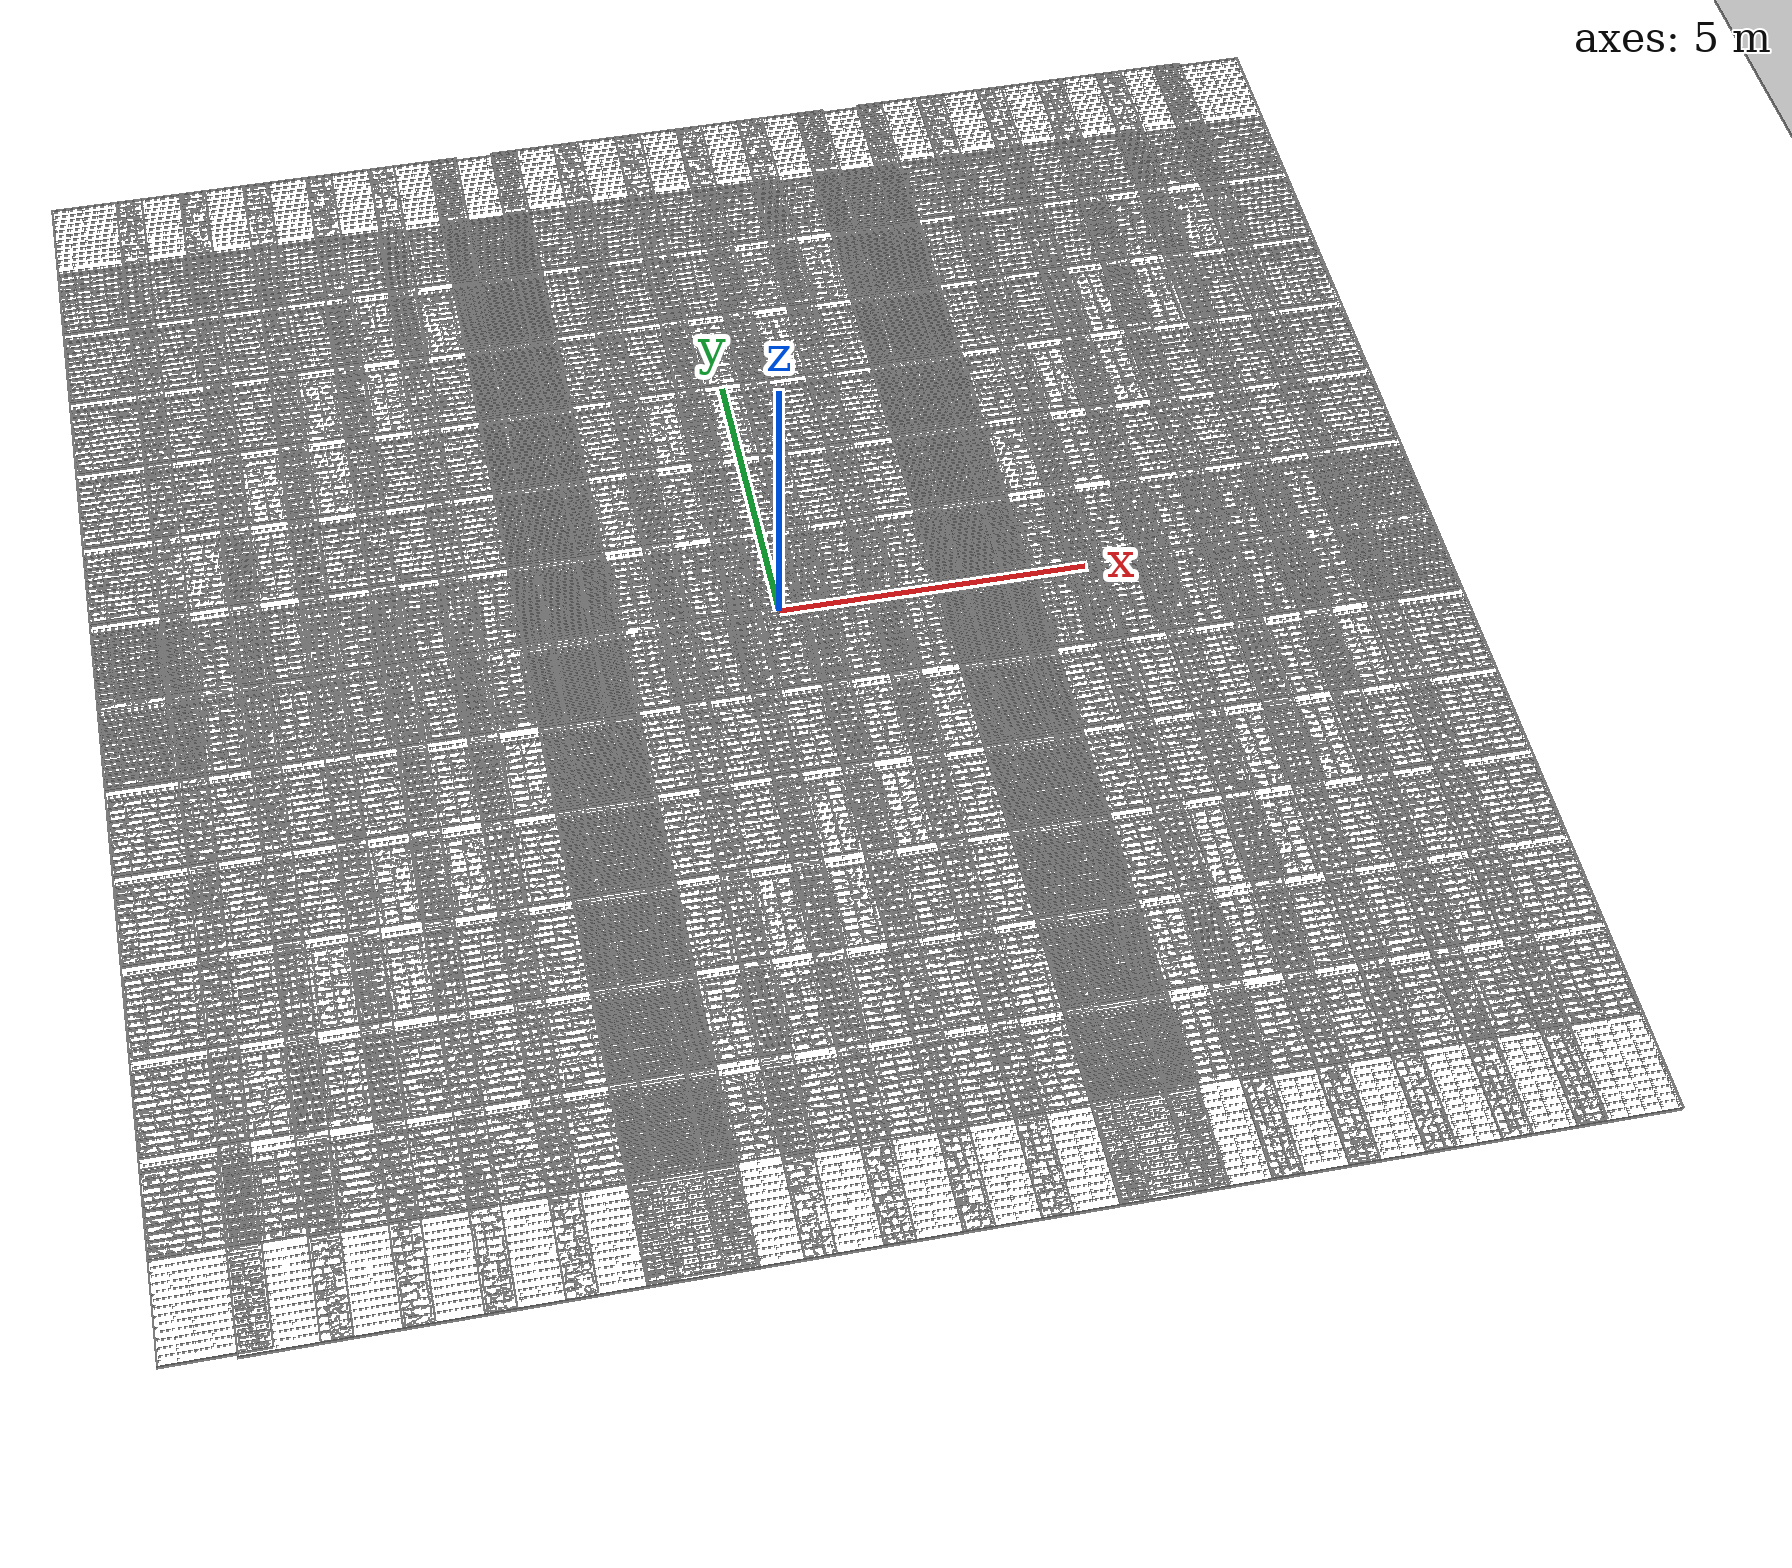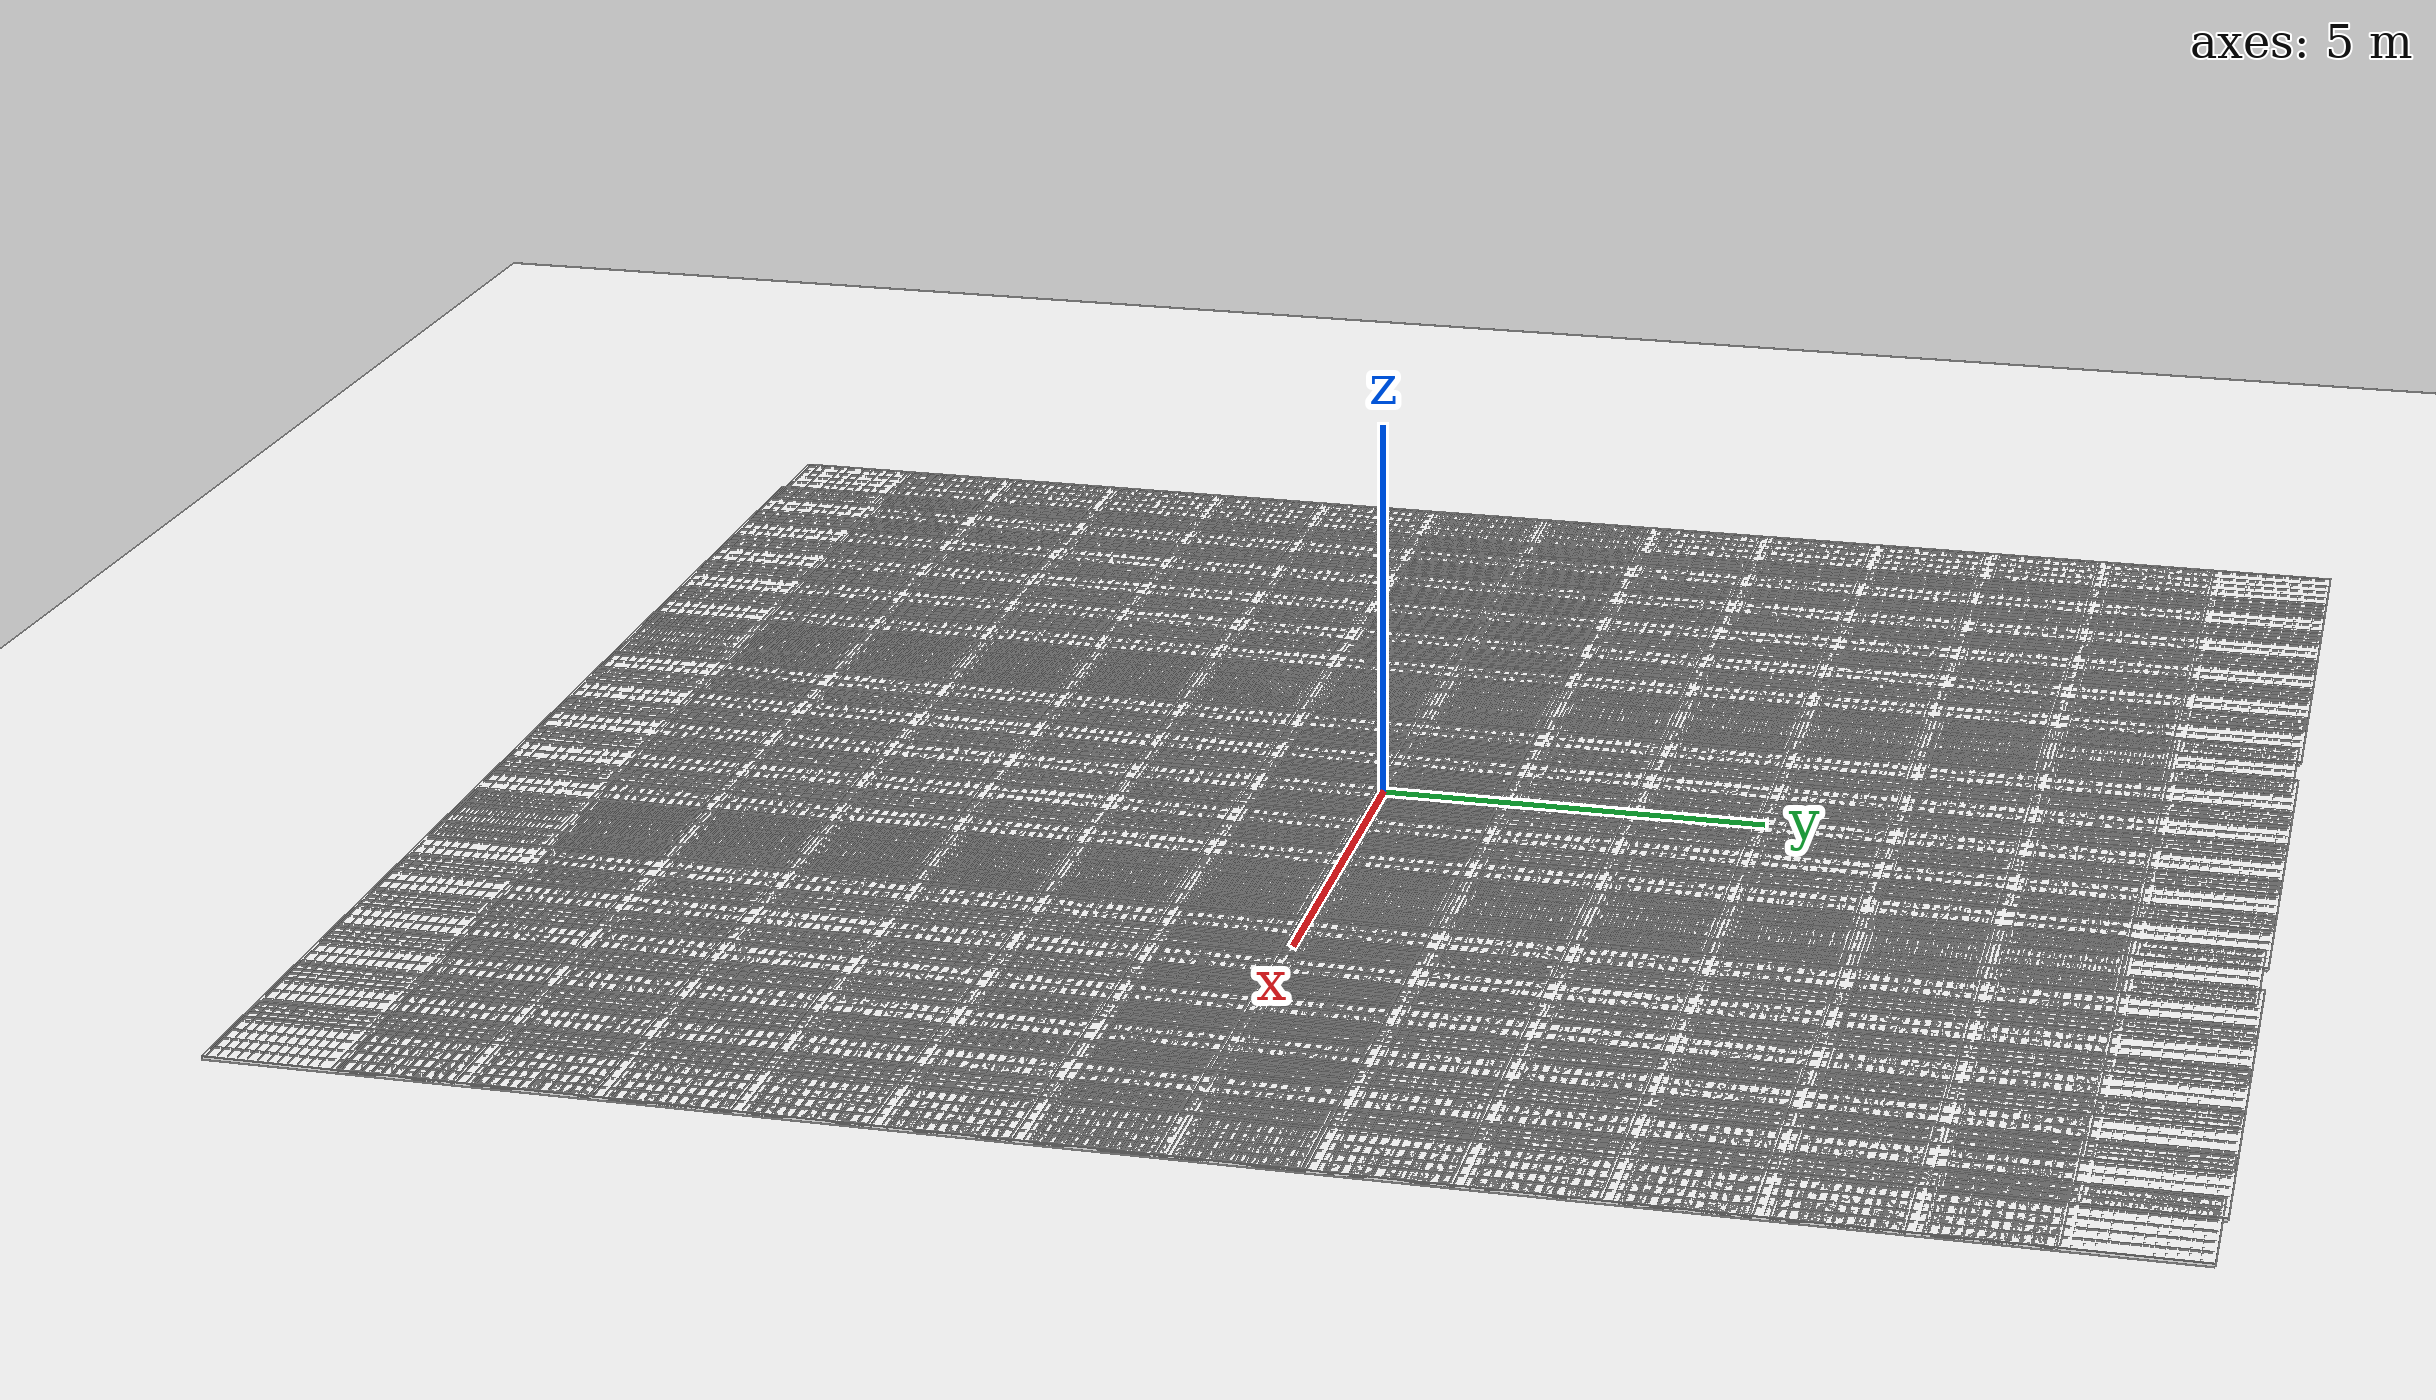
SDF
<?xml version="1.0"?>

<sdf version="1.6">
    <world name="my_experiment">
        <physics name="4ms" type="ignored">
            <max_step_size>0.004</max_step_size>
            <real_time_factor>1.0</real_time_factor>
        </physics>
        <plugin
            filename="gz-sim-physics-system"
            name="gz::sim::systems::Physics">
        </plugin>
        <plugin
            filename="gz-sim-scene-broadcaster-system"
            name="gz::sim::systems::SceneBroadcaster">
        </plugin>
        <plugin
            filename="gz-sim-user-commands-system"
            name="gz::sim::systems::UserCommands">
        </plugin>
        <plugin
            filename="gz-sim-sensors-system"
            name="gz::sim::systems::Sensors">
            <render_engine>ogre2</render_engine>
        </plugin>

        <light type="directional"
            name="sun">
            <cast_shadows>true</cast_shadows>
            <pose>0 0 10 0 0 0</pose>
            <diffuse>0.8 0.8 0.8 1</diffuse>
            <specular>0.2 0.2 0.2 1</specular>
            <attenuation>
                <range>1000</range>
                <constant>0.9</constant>
                <linear>0.01</linear>
                <quadratic>0.001</quadratic>
            </attenuation>
            <direction>-0.5 0.1 -0.9</direction>
        </light>

        <spherical_coordinates>
            <surface_model>EARTH_WGS84</surface_model>
            <latitude_deg>40.4405287</latitude_deg>
            <longitude_deg>-3.6898277</longitude_deg>
            <elevation>100.0</elevation>
            <heading_deg>0.0</heading_deg><!-- Temporary fix for issue
            https://bitbucket.org/osrf/sim/issues/2022/default-sphericalcoordinates-frame-should -->
        </spherical_coordinates>

        <scene>
            <sky>
                <clouds>
                    <speed>2</speed>
                </clouds>
            </sky>
        </scene>

        <include>
            <uri>model://grass_patch</uri>
        </include>
        <include>
            <uri>model://solar_panel</uri>
            <name>panel_0000</name>
            <pose>-3.333 0.0 0.0 0.0 0.0 0.0</pose>
        </include>
        <include>
            <uri>model://solar_panel</uri>
            <name>panel_0001</name>
            <pose>-3.333 0.0 0.0 0.0 0.0 0.0</pose>
        </include>
        <include>
            <uri>model://solar_panel</uri>
            <name>panel_0002</name>
            <pose>-3.333 1.657 0.0 0.0 0.0 0.0</pose>
        </include>
        <include>
            <uri>model://solar_panel</uri>
            <name>panel_0003</name>
            <pose>-4.451 0.0 0.0 0.0 0.0 0.0</pose>
        </include>
        <include>
            <uri>model://solar_panel</uri>
            <name>panel_0004</name>
            <pose>-5.568 0.0 0.0 0.0 0.0 0.0</pose>
        </include>
        <include>
            <uri>model://solar_panel</uri>
            <name>panel_0005</name>
            <pose>-4.451 1.657 0.0 0.0 0.0 0.0</pose>
        </include>
        <include>
            <uri>model://solar_panel</uri>
            <name>panel_0006</name>
            <pose>-3.333 3.314 0.0 0.0 0.0 0.0</pose>
        </include>
        <include>
            <uri>model://solar_panel</uri>
            <name>panel_0007</name>
            <pose>-3.333 4.971 0.0 0.0 0.0 0.0</pose>
        </include>
        <include>
            <uri>model://solar_panel</uri>
            <name>panel_0008</name>
            <pose>-4.451 3.314 0.0 0.0 0.0 0.0</pose>
        </include>
        <include>
            <uri>model://solar_panel</uri>
            <name>panel_0009</name>
            <pose>-5.568 1.657 0.0 0.0 0.0 0.0</pose>
        </include>
        <include>
            <uri>model://solar_panel</uri>
            <name>panel_0010</name>
            <pose>-6.686 0.0 0.0 0.0 0.0 0.0</pose>
        </include>
        <include>
            <uri>model://solar_panel</uri>
            <name>panel_0011</name>
            <pose>-7.804 0.0 0.0 0.0 0.0 0.0</pose>
        </include>
        <include>
            <uri>model://solar_panel</uri>
            <name>panel_0012</name>
            <pose>-6.686 1.657 0.0 0.0 0.0 0.0</pose>
        </include>
        <include>
            <uri>model://solar_panel</uri>
            <name>panel_0013</name>
            <pose>-5.568 3.314 0.0 0.0 0.0 0.0</pose>
        </include>
        <include>
            <uri>model://solar_panel</uri>
            <name>panel_0014</name>
            <pose>-4.451 4.971 0.0 0.0 0.0 0.0</pose>
        </include>
        <include>
            <uri>model://solar_panel</uri>
            <name>panel_0015</name>
            <pose>-3.333 6.628 0.0 0.0 0.0 0.0</pose>
        </include>
        <include>
            <uri>model://solar_panel</uri>
            <name>panel_0016</name>
            <pose>-3.333 8.285 0.0 0.0 0.0 0.0</pose>
        </include>
        <include>
            <uri>model://solar_panel</uri>
            <name>panel_0017</name>
            <pose>-4.451 6.628 0.0 0.0 0.0 0.0</pose>
        </include>
        <include>
            <uri>model://solar_panel</uri>
            <name>panel_0018</name>
            <pose>-5.568 4.971 0.0 0.0 0.0 0.0</pose>
        </include>
        <include>
            <uri>model://solar_panel</uri>
            <name>panel_0019</name>
            <pose>-6.686 3.314 0.0 0.0 0.0 0.0</pose>
        </include>
        <include>
            <uri>model://solar_panel</uri>
            <name>panel_0020</name>
            <pose>-7.804 1.657 0.0 0.0 0.0 0.0</pose>
        </include>
        <include>
            <uri>model://solar_panel</uri>
            <name>panel_0021</name>
            <pose>-8.921 0.0 0.0 0.0 0.0 0.0</pose>
        </include>
        <include>
            <uri>model://solar_panel</uri>
            <name>panel_0022</name>
            <pose>-10.0 0.058 0.0 0.0 0.0 0.0</pose>
        </include>
        <include>
            <uri>model://solar_panel</uri>
            <name>panel_0023</name>
            <pose>-8.889 1.705 0.0 0.0 0.0 0.0</pose>
        </include>
        <include>
            <uri>model://solar_panel</uri>
            <name>panel_0024</name>
            <pose>-7.778 3.353 0.0 0.0 0.0 0.0</pose>
        </include>
        <include>
            <uri>model://solar_panel</uri>
            <name>panel_0025</name>
            <pose>-6.667 5.0 0.0 0.0 0.0 0.0</pose>
        </include>
        <include>
            <uri>model://solar_panel</uri>
            <name>panel_0026</name>
            <pose>-5.555 6.647 0.0 0.0 0.0 0.0</pose>
        </include>
        <include>
            <uri>model://solar_panel</uri>
            <name>panel_0027</name>
            <pose>-4.444 8.295 0.0 0.0 0.0 0.0</pose>
        </include>
        <include>
            <uri>model://solar_panel</uri>
            <name>panel_0028</name>
            <pose>-3.333 9.942 0.0 0.0 0.0 0.0</pose>
        </include>
        <include>
            <uri>model://solar_panel</uri>
            <name>panel_0029</name>
            <pose>-4.412 10.0 0.0 0.0 0.0 0.0</pose>
        </include>
        <include>
            <uri>model://solar_panel</uri>
            <name>panel_0030</name>
            <pose>-5.529 8.343 0.0 0.0 0.0 0.0</pose>
        </include>
        <include>
            <uri>model://solar_panel</uri>
            <name>panel_0031</name>
            <pose>-6.647 6.686 0.0 0.0 0.0 0.0</pose>
        </include>
        <include>
            <uri>model://solar_panel</uri>
            <name>panel_0032</name>
            <pose>-7.765 5.029 0.0 0.0 0.0 0.0</pose>
        </include>
        <include>
            <uri>model://solar_panel</uri>
            <name>panel_0033</name>
            <pose>-8.882 3.372 0.0 0.0 0.0 0.0</pose>
        </include>
        <include>
            <uri>model://solar_panel</uri>
            <name>panel_0034</name>
            <pose>-10.0 1.715 0.0 0.0 0.0 0.0</pose>
        </include>
        <include>
            <uri>model://solar_panel</uri>
            <name>panel_0035</name>
            <pose>-10.0 3.372 0.0 0.0 0.0 0.0</pose>
        </include>
        <include>
            <uri>model://solar_panel</uri>
            <name>panel_0036</name>
            <pose>-8.882 5.029 0.0 0.0 0.0 0.0</pose>
        </include>
        <include>
            <uri>model://solar_panel</uri>
            <name>panel_0037</name>
            <pose>-7.765 6.686 0.0 0.0 0.0 0.0</pose>
        </include>
        <include>
            <uri>model://solar_panel</uri>
            <name>panel_0038</name>
            <pose>-6.647 8.343 0.0 0.0 0.0 0.0</pose>
        </include>
        <include>
            <uri>model://solar_panel</uri>
            <name>panel_0039</name>
            <pose>-5.529 10.0 0.0 0.0 0.0 0.0</pose>
        </include>
        <include>
            <uri>model://solar_panel</uri>
            <name>panel_0040</name>
            <pose>-6.647 10.0 0.0 0.0 0.0 0.0</pose>
        </include>
        <include>
            <uri>model://solar_panel</uri>
            <name>panel_0041</name>
            <pose>-7.765 8.343 0.0 0.0 0.0 0.0</pose>
        </include>
        <include>
            <uri>model://solar_panel</uri>
            <name>panel_0042</name>
            <pose>-8.882 6.686 0.0 0.0 0.0 0.0</pose>
        </include>
        <include>
            <uri>model://solar_panel</uri>
            <name>panel_0043</name>
            <pose>-10.0 5.029 0.0 0.0 0.0 0.0</pose>
        </include>
        <include>
            <uri>model://solar_panel</uri>
            <name>panel_0044</name>
            <pose>-10.0 6.686 0.0 0.0 0.0 0.0</pose>
        </include>
        <include>
            <uri>model://solar_panel</uri>
            <name>panel_0045</name>
            <pose>-8.882 8.343 0.0 0.0 0.0 0.0</pose>
        </include>
        <include>
            <uri>model://solar_panel</uri>
            <name>panel_0046</name>
            <pose>-7.765 10.0 0.0 0.0 0.0 0.0</pose>
        </include>
        <include>
            <uri>model://solar_panel</uri>
            <name>panel_0047</name>
            <pose>-8.882 10.0 0.0 0.0 0.0 0.0</pose>
        </include>
        <include>
            <uri>model://solar_panel</uri>
            <name>panel_0048</name>
            <pose>-10.0 8.343 0.0 0.0 0.0 0.0</pose>
        </include>
        <include>
            <uri>model://solar_panel</uri>
            <name>panel_0049</name>
            <pose>-10.0 10.0 0.0 0.0 0.0 0.0</pose>
        </include>
        <include>
            <uri>model://solar_panel</uri>
            <name>panel_0050</name>
            <pose>-10.0 10.0 0.0 0.0 0.0 0.0</pose>
        </include>
        <include>
            <uri>model://solar_panel</uri>
            <name>panel_0051</name>
            <pose>-3.333 8.343 0.0 0.0 0.0 0.0</pose>
        </include>
        <include>
            <uri>model://solar_panel</uri>
            <name>panel_0052</name>
            <pose>-2.215 10.0 0.0 0.0 0.0 0.0</pose>
        </include>
        <include>
            <uri>model://solar_panel</uri>
            <name>panel_0053</name>
            <pose>-1.098 10.0 0.0 0.0 0.0 0.0</pose>
        </include>
        <include>
            <uri>model://solar_panel</uri>
            <name>panel_0054</name>
            <pose>-2.215 8.343 0.0 0.0 0.0 0.0</pose>
        </include>
        <include>
            <uri>model://solar_panel</uri>
            <name>panel_0055</name>
            <pose>-3.333 6.686 0.0 0.0 0.0 0.0</pose>
        </include>
        <include>
            <uri>model://solar_panel</uri>
            <name>panel_0056</name>
            <pose>-3.333 5.029 0.0 0.0 0.0 0.0</pose>
        </include>
        <include>
            <uri>model://solar_panel</uri>
            <name>panel_0057</name>
            <pose>-2.215 6.686 0.0 0.0 0.0 0.0</pose>
        </include>
        <include>
            <uri>model://solar_panel</uri>
            <name>panel_0058</name>
            <pose>-1.098 8.343 0.0 0.0 0.0 0.0</pose>
        </include>
        <include>
            <uri>model://solar_panel</uri>
            <name>panel_0059</name>
            <pose>0.02 10.0 0.0 0.0 0.0 0.0</pose>
        </include>
        <include>
            <uri>model://solar_panel</uri>
            <name>panel_0060</name>
            <pose>1.137 10.0 0.0 0.0 0.0 0.0</pose>
        </include>
        <include>
            <uri>model://solar_panel</uri>
            <name>panel_0061</name>
            <pose>0.02 8.343 0.0 0.0 0.0 0.0</pose>
        </include>
        <include>
            <uri>model://solar_panel</uri>
            <name>panel_0062</name>
            <pose>-1.098 6.686 0.0 0.0 0.0 0.0</pose>
        </include>
        <include>
            <uri>model://solar_panel</uri>
            <name>panel_0063</name>
            <pose>-2.215 5.029 0.0 0.0 0.0 0.0</pose>
        </include>
        <include>
            <uri>model://solar_panel</uri>
            <name>panel_0064</name>
            <pose>-3.333 3.372 0.0 0.0 0.0 0.0</pose>
        </include>
        <include>
            <uri>model://solar_panel</uri>
            <name>panel_0065</name>
            <pose>-3.333 1.716 0.0 0.0 0.0 0.0</pose>
        </include>
        <include>
            <uri>model://solar_panel</uri>
            <name>panel_0066</name>
            <pose>-2.215 3.372 0.0 0.0 0.0 0.0</pose>
        </include>
        <include>
            <uri>model://solar_panel</uri>
            <name>panel_0067</name>
            <pose>-1.098 5.029 0.0 0.0 0.0 0.0</pose>
        </include>
        <include>
            <uri>model://solar_panel</uri>
            <name>panel_0068</name>
            <pose>0.02 6.686 0.0 0.0 0.0 0.0</pose>
        </include>
        <include>
            <uri>model://solar_panel</uri>
            <name>panel_0069</name>
            <pose>1.137 8.343 0.0 0.0 0.0 0.0</pose>
        </include>
        <include>
            <uri>model://solar_panel</uri>
            <name>panel_0070</name>
            <pose>2.255 10.0 0.0 0.0 0.0 0.0</pose>
        </include>
        <include>
            <uri>model://solar_panel</uri>
            <name>panel_0071</name>
            <pose>3.333 9.941 0.0 0.0 0.0 0.0</pose>
        </include>
        <include>
            <uri>model://solar_panel</uri>
            <name>panel_0072</name>
            <pose>2.222 8.294 0.0 0.0 0.0 0.0</pose>
        </include>
        <include>
            <uri>model://solar_panel</uri>
            <name>panel_0073</name>
            <pose>1.111 6.647 0.0 0.0 0.0 0.0</pose>
        </include>
        <include>
            <uri>model://solar_panel</uri>
            <name>panel_0074</name>
            <pose>0.0 5.0 0.0 0.0 0.0 0.0</pose>
        </include>
        <include>
            <uri>model://solar_panel</uri>
            <name>panel_0075</name>
            <pose>-1.111 3.353 0.0 0.0 0.0 0.0</pose>
        </include>
        <include>
            <uri>model://solar_panel</uri>
            <name>panel_0076</name>
            <pose>-2.222 1.706 0.0 0.0 0.0 0.0</pose>
        </include>
        <include>
            <uri>model://solar_panel</uri>
            <name>panel_0077</name>
            <pose>-3.333 0.059 0.0 0.0 0.0 0.0</pose>
        </include>
        <include>
            <uri>model://solar_panel</uri>
            <name>panel_0078</name>
            <pose>-2.255 -0.0 0.0 0.0 0.0 0.0</pose>
        </include>
        <include>
            <uri>model://solar_panel</uri>
            <name>panel_0079</name>
            <pose>-1.137 1.657 0.0 0.0 0.0 0.0</pose>
        </include>
        <include>
            <uri>model://solar_panel</uri>
            <name>panel_0080</name>
            <pose>-0.02 3.314 0.0 0.0 0.0 0.0</pose>
        </include>
        <include>
            <uri>model://solar_panel</uri>
            <name>panel_0081</name>
            <pose>1.098 4.971 0.0 0.0 0.0 0.0</pose>
        </include>
        <include>
            <uri>model://solar_panel</uri>
            <name>panel_0082</name>
            <pose>2.215 6.628 0.0 0.0 0.0 0.0</pose>
        </include>
        <include>
            <uri>model://solar_panel</uri>
            <name>panel_0083</name>
            <pose>3.333 8.284 0.0 0.0 0.0 0.0</pose>
        </include>
        <include>
            <uri>model://solar_panel</uri>
            <name>panel_0084</name>
            <pose>3.333 6.628 0.0 0.0 0.0 0.0</pose>
        </include>
        <include>
            <uri>model://solar_panel</uri>
            <name>panel_0085</name>
            <pose>2.215 4.971 0.0 0.0 0.0 0.0</pose>
        </include>
        <include>
            <uri>model://solar_panel</uri>
            <name>panel_0086</name>
            <pose>1.098 3.314 0.0 0.0 0.0 0.0</pose>
        </include>
        <include>
            <uri>model://solar_panel</uri>
            <name>panel_0087</name>
            <pose>-0.02 1.657 0.0 0.0 0.0 0.0</pose>
        </include>
        <include>
            <uri>model://solar_panel</uri>
            <name>panel_0088</name>
            <pose>-1.137 0.0 0.0 0.0 0.0 0.0</pose>
        </include>
        <include>
            <uri>model://solar_panel</uri>
            <name>panel_0089</name>
            <pose>-0.02 0.0 0.0 0.0 0.0 0.0</pose>
        </include>
        <include>
            <uri>model://solar_panel</uri>
            <name>panel_0090</name>
            <pose>1.098 1.657 0.0 0.0 0.0 0.0</pose>
        </include>
        <include>
            <uri>model://solar_panel</uri>
            <name>panel_0091</name>
            <pose>2.215 3.314 0.0 0.0 0.0 0.0</pose>
        </include>
        <include>
            <uri>model://solar_panel</uri>
            <name>panel_0092</name>
            <pose>3.333 4.971 0.0 0.0 0.0 0.0</pose>
        </include>
        <include>
            <uri>model://solar_panel</uri>
            <name>panel_0093</name>
            <pose>3.333 3.314 0.0 0.0 0.0 0.0</pose>
        </include>
        <include>
            <uri>model://solar_panel</uri>
            <name>panel_0094</name>
            <pose>2.215 1.657 0.0 0.0 0.0 0.0</pose>
        </include>
        <include>
            <uri>model://solar_panel</uri>
            <name>panel_0095</name>
            <pose>1.098 0.0 0.0 0.0 0.0 0.0</pose>
        </include>
        <include>
            <uri>model://solar_panel</uri>
            <name>panel_0096</name>
            <pose>2.215 -0.0 0.0 0.0 0.0 0.0</pose>
        </include>
        <include>
            <uri>model://solar_panel</uri>
            <name>panel_0097</name>
            <pose>3.333 1.657 0.0 0.0 0.0 0.0</pose>
        </include>
        <include>
            <uri>model://solar_panel</uri>
            <name>panel_0098</name>
            <pose>3.333 0.0 0.0 0.0 0.0 0.0</pose>
        </include>
        <include>
            <uri>model://solar_panel</uri>
            <name>panel_0099</name>
            <pose>3.333 0.0 0.0 0.0 0.0 0.0</pose>
        </include>
        <include>
            <uri>model://solar_panel</uri>
            <name>panel_0100</name>
            <pose>3.333 8.343 0.0 0.0 0.0 0.0</pose>
        </include>
        <include>
            <uri>model://solar_panel</uri>
            <name>panel_0101</name>
            <pose>4.451 10.0 0.0 0.0 0.0 0.0</pose>
        </include>
        <include>
            <uri>model://solar_panel</uri>
            <name>panel_0102</name>
            <pose>5.568 10.0 0.0 0.0 0.0 0.0</pose>
        </include>
        <include>
            <uri>model://solar_panel</uri>
            <name>panel_0103</name>
            <pose>4.451 8.343 0.0 0.0 0.0 0.0</pose>
        </include>
        <include>
            <uri>model://solar_panel</uri>
            <name>panel_0104</name>
            <pose>3.333 6.686 0.0 0.0 0.0 0.0</pose>
        </include>
        <include>
            <uri>model://solar_panel</uri>
            <name>panel_0105</name>
            <pose>3.333 5.029 0.0 0.0 0.0 0.0</pose>
        </include>
        <include>
            <uri>model://solar_panel</uri>
            <name>panel_0106</name>
            <pose>4.451 6.686 0.0 0.0 0.0 0.0</pose>
        </include>
        <include>
            <uri>model://solar_panel</uri>
            <name>panel_0107</name>
            <pose>5.568 8.343 0.0 0.0 0.0 0.0</pose>
        </include>
        <include>
            <uri>model://solar_panel</uri>
            <name>panel_0108</name>
            <pose>6.686 10.0 0.0 0.0 0.0 0.0</pose>
        </include>
        <include>
            <uri>model://solar_panel</uri>
            <name>panel_0109</name>
            <pose>7.804 10.0 0.0 0.0 0.0 0.0</pose>
        </include>
        <include>
            <uri>model://solar_panel</uri>
            <name>panel_0110</name>
            <pose>6.686 8.343 0.0 0.0 0.0 0.0</pose>
        </include>
        <include>
            <uri>model://solar_panel</uri>
            <name>panel_0111</name>
            <pose>5.568 6.686 0.0 0.0 0.0 0.0</pose>
        </include>
        <include>
            <uri>model://solar_panel</uri>
            <name>panel_0112</name>
            <pose>4.451 5.029 0.0 0.0 0.0 0.0</pose>
        </include>
        <include>
            <uri>model://solar_panel</uri>
            <name>panel_0113</name>
            <pose>3.333 3.372 0.0 0.0 0.0 0.0</pose>
        </include>
        <include>
            <uri>model://solar_panel</uri>
            <name>panel_0114</name>
            <pose>3.333 1.715 0.0 0.0 0.0 0.0</pose>
        </include>
        <include>
            <uri>model://solar_panel</uri>
            <name>panel_0115</name>
            <pose>4.451 3.372 0.0 0.0 0.0 0.0</pose>
        </include>
        <include>
            <uri>model://solar_panel</uri>
            <name>panel_0116</name>
            <pose>5.568 5.029 0.0 0.0 0.0 0.0</pose>
        </include>
        <include>
            <uri>model://solar_panel</uri>
            <name>panel_0117</name>
            <pose>6.686 6.686 0.0 0.0 0.0 0.0</pose>
        </include>
        <include>
            <uri>model://solar_panel</uri>
            <name>panel_0118</name>
            <pose>7.804 8.343 0.0 0.0 0.0 0.0</pose>
        </include>
        <include>
            <uri>model://solar_panel</uri>
            <name>panel_0119</name>
            <pose>8.921 10.0 0.0 0.0 0.0 0.0</pose>
        </include>
        <include>
            <uri>model://solar_panel</uri>
            <name>panel_0120</name>
            <pose>10.0 9.942 0.0 0.0 0.0 0.0</pose>
        </include>
        <include>
            <uri>model://solar_panel</uri>
            <name>panel_0121</name>
            <pose>8.889 8.295 0.0 0.0 0.0 0.0</pose>
        </include>
        <include>
            <uri>model://solar_panel</uri>
            <name>panel_0122</name>
            <pose>7.778 6.647 0.0 0.0 0.0 0.0</pose>
        </include>
        <include>
            <uri>model://solar_panel</uri>
            <name>panel_0123</name>
            <pose>6.666 5.0 0.0 0.0 0.0 0.0</pose>
        </include>
        <include>
            <uri>model://solar_panel</uri>
            <name>panel_0124</name>
            <pose>5.555 3.353 0.0 0.0 0.0 0.0</pose>
        </include>
        <include>
            <uri>model://solar_panel</uri>
            <name>panel_0125</name>
            <pose>4.444 1.705 0.0 0.0 0.0 0.0</pose>
        </include>
        <include>
            <uri>model://solar_panel</uri>
            <name>panel_0126</name>
            <pose>3.333 0.058 0.0 0.0 0.0 0.0</pose>
        </include>
        <include>
            <uri>model://solar_panel</uri>
            <name>panel_0127</name>
            <pose>4.412 0.0 0.0 0.0 0.0 0.0</pose>
        </include>
        <include>
            <uri>model://solar_panel</uri>
            <name>panel_0128</name>
            <pose>5.529 1.657 0.0 0.0 0.0 0.0</pose>
        </include>
        <include>
            <uri>model://solar_panel</uri>
            <name>panel_0129</name>
            <pose>6.647 3.314 0.0 0.0 0.0 0.0</pose>
        </include>
        <include>
            <uri>model://solar_panel</uri>
            <name>panel_0130</name>
            <pose>7.765 4.971 0.0 0.0 0.0 0.0</pose>
        </include>
        <include>
            <uri>model://solar_panel</uri>
            <name>panel_0131</name>
            <pose>8.882 6.628 0.0 0.0 0.0 0.0</pose>
        </include>
        <include>
            <uri>model://solar_panel</uri>
            <name>panel_0132</name>
            <pose>10.0 8.285 0.0 0.0 0.0 0.0</pose>
        </include>
        <include>
            <uri>model://solar_panel</uri>
            <name>panel_0133</name>
            <pose>10.0 6.628 0.0 0.0 0.0 0.0</pose>
        </include>
        <include>
            <uri>model://solar_panel</uri>
            <name>panel_0134</name>
            <pose>8.882 4.971 0.0 0.0 0.0 0.0</pose>
        </include>
        <include>
            <uri>model://solar_panel</uri>
            <name>panel_0135</name>
            <pose>7.765 3.314 0.0 0.0 0.0 0.0</pose>
        </include>
        <include>
            <uri>model://solar_panel</uri>
            <name>panel_0136</name>
            <pose>6.647 1.657 0.0 0.0 0.0 0.0</pose>
        </include>
        <include>
            <uri>model://solar_panel</uri>
            <name>panel_0137</name>
            <pose>5.529 -0.0 0.0 0.0 0.0 0.0</pose>
        </include>
        <include>
            <uri>model://solar_panel</uri>
            <name>panel_0138</name>
            <pose>6.647 -0.0 0.0 0.0 0.0 0.0</pose>
        </include>
        <include>
            <uri>model://solar_panel</uri>
            <name>panel_0139</name>
            <pose>7.765 1.657 0.0 0.0 0.0 0.0</pose>
        </include>
        <include>
            <uri>model://solar_panel</uri>
            <name>panel_0140</name>
            <pose>8.882 3.314 0.0 0.0 0.0 0.0</pose>
        </include>
        <include>
            <uri>model://solar_panel</uri>
            <name>panel_0141</name>
            <pose>10.0 4.971 0.0 0.0 0.0 0.0</pose>
        </include>
        <include>
            <uri>model://solar_panel</uri>
            <name>panel_0142</name>
            <pose>10.0 3.314 0.0 0.0 0.0 0.0</pose>
        </include>
        <include>
            <uri>model://solar_panel</uri>
            <name>panel_0143</name>
            <pose>8.882 1.657 0.0 0.0 0.0 0.0</pose>
        </include>
        <include>
            <uri>model://solar_panel</uri>
            <name>panel_0144</name>
            <pose>7.765 -0.0 0.0 0.0 0.0 0.0</pose>
        </include>
        <include>
            <uri>model://solar_panel</uri>
            <name>panel_0145</name>
            <pose>8.882 0.0 0.0 0.0 0.0 0.0</pose>
        </include>
        <include>
            <uri>model://solar_panel</uri>
            <name>panel_0146</name>
            <pose>10.0 1.657 0.0 0.0 0.0 0.0</pose>
        </include>
        <include>
            <uri>model://solar_panel</uri>
            <name>panel_0147</name>
            <pose>10.0 -0.0 0.0 0.0 0.0 0.0</pose>
        </include>
        <include>
            <uri>model://solar_panel</uri>
            <name>panel_0148</name>
            <pose>10.0 -0.0 0.0 0.0 0.0 0.0</pose>
        </include>
        <include>
            <uri>model://solar_panel</uri>
            <name>panel_0149</name>
            <pose>-3.333 -10.0 0.0 0.0 0.0 0.0</pose>
        </include>
        <include>
            <uri>model://solar_panel</uri>
            <name>panel_0150</name>
            <pose>-3.333 -10.0 0.0 0.0 0.0 0.0</pose>
        </include>
        <include>
            <uri>model://solar_panel</uri>
            <name>panel_0151</name>
            <pose>-3.333 -8.343 0.0 0.0 0.0 0.0</pose>
        </include>
        <include>
            <uri>model://solar_panel</uri>
            <name>panel_0152</name>
            <pose>-4.451 -10.0 0.0 0.0 0.0 0.0</pose>
        </include>
        <include>
            <uri>model://solar_panel</uri>
            <name>panel_0153</name>
            <pose>-5.568 -10.0 0.0 0.0 0.0 0.0</pose>
        </include>
        <include>
            <uri>model://solar_panel</uri>
            <name>panel_0154</name>
            <pose>-4.451 -8.343 0.0 0.0 0.0 0.0</pose>
        </include>
        <include>
            <uri>model://solar_panel</uri>
            <name>panel_0155</name>
            <pose>-3.333 -6.686 0.0 0.0 0.0 0.0</pose>
        </include>
        <include>
            <uri>model://solar_panel</uri>
            <name>panel_0156</name>
            <pose>-3.333 -5.029 0.0 0.0 0.0 0.0</pose>
        </include>
        <include>
            <uri>model://solar_panel</uri>
            <name>panel_0157</name>
            <pose>-4.451 -6.686 0.0 0.0 0.0 0.0</pose>
        </include>
        <include>
            <uri>model://solar_panel</uri>
            <name>panel_0158</name>
            <pose>-5.568 -8.343 0.0 0.0 0.0 0.0</pose>
        </include>
        <include>
            <uri>model://solar_panel</uri>
            <name>panel_0159</name>
            <pose>-6.686 -10.0 0.0 0.0 0.0 0.0</pose>
        </include>
        <include>
            <uri>model://solar_panel</uri>
            <name>panel_0160</name>
            <pose>-7.804 -10.0 0.0 0.0 0.0 0.0</pose>
        </include>
        <include>
            <uri>model://solar_panel</uri>
            <name>panel_0161</name>
            <pose>-6.686 -8.343 0.0 0.0 0.0 0.0</pose>
        </include>
        <include>
            <uri>model://solar_panel</uri>
            <name>panel_0162</name>
            <pose>-5.568 -6.686 0.0 0.0 0.0 0.0</pose>
        </include>
        <include>
            <uri>model://solar_panel</uri>
            <name>panel_0163</name>
            <pose>-4.451 -5.029 0.0 0.0 0.0 0.0</pose>
        </include>
        <include>
            <uri>model://solar_panel</uri>
            <name>panel_0164</name>
            <pose>-3.333 -3.372 0.0 0.0 0.0 0.0</pose>
        </include>
        <include>
            <uri>model://solar_panel</uri>
            <name>panel_0165</name>
            <pose>-3.333 -1.715 0.0 0.0 0.0 0.0</pose>
        </include>
        <include>
            <uri>model://solar_panel</uri>
            <name>panel_0166</name>
            <pose>-4.451 -3.372 0.0 0.0 0.0 0.0</pose>
        </include>
        <include>
            <uri>model://solar_panel</uri>
            <name>panel_0167</name>
            <pose>-5.568 -5.029 0.0 0.0 0.0 0.0</pose>
        </include>
        <include>
            <uri>model://solar_panel</uri>
            <name>panel_0168</name>
            <pose>-6.686 -6.686 0.0 0.0 0.0 0.0</pose>
        </include>
        <include>
            <uri>model://solar_panel</uri>
            <name>panel_0169</name>
            <pose>-7.804 -8.343 0.0 0.0 0.0 0.0</pose>
        </include>
        <include>
            <uri>model://solar_panel</uri>
            <name>panel_0170</name>
            <pose>-8.921 -10.0 0.0 0.0 0.0 0.0</pose>
        </include>
        <include>
            <uri>model://solar_panel</uri>
            <name>panel_0171</name>
            <pose>-10.0 -9.942 0.0 0.0 0.0 0.0</pose>
        </include>
        <include>
            <uri>model://solar_panel</uri>
            <name>panel_0172</name>
            <pose>-8.889 -8.295 0.0 0.0 0.0 0.0</pose>
        </include>
        <include>
            <uri>model://solar_panel</uri>
            <name>panel_0173</name>
            <pose>-7.778 -6.647 0.0 0.0 0.0 0.0</pose>
        </include>
        <include>
            <uri>model://solar_panel</uri>
            <name>panel_0174</name>
            <pose>-6.667 -5.0 0.0 0.0 0.0 0.0</pose>
        </include>
        <include>
            <uri>model://solar_panel</uri>
            <name>panel_0175</name>
            <pose>-5.555 -3.353 0.0 0.0 0.0 0.0</pose>
        </include>
        <include>
            <uri>model://solar_panel</uri>
            <name>panel_0176</name>
            <pose>-4.444 -1.705 0.0 0.0 0.0 0.0</pose>
        </include>
        <include>
            <uri>model://solar_panel</uri>
            <name>panel_0177</name>
            <pose>-3.333 -0.058 0.0 0.0 0.0 0.0</pose>
        </include>
        <include>
            <uri>model://solar_panel</uri>
            <name>panel_0178</name>
            <pose>-4.412 0.0 0.0 0.0 0.0 0.0</pose>
        </include>
        <include>
            <uri>model://solar_panel</uri>
            <name>panel_0179</name>
            <pose>-5.529 -1.657 0.0 0.0 0.0 0.0</pose>
        </include>
        <include>
            <uri>model://solar_panel</uri>
            <name>panel_0180</name>
            <pose>-6.647 -3.314 0.0 0.0 0.0 0.0</pose>
        </include>
        <include>
            <uri>model://solar_panel</uri>
            <name>panel_0181</name>
            <pose>-7.765 -4.971 0.0 0.0 0.0 0.0</pose>
        </include>
        <include>
            <uri>model://solar_panel</uri>
            <name>panel_0182</name>
            <pose>-8.882 -6.628 0.0 0.0 0.0 0.0</pose>
        </include>
        <include>
            <uri>model://solar_panel</uri>
            <name>panel_0183</name>
            <pose>-10.0 -8.285 0.0 0.0 0.0 0.0</pose>
        </include>
        <include>
            <uri>model://solar_panel</uri>
            <name>panel_0184</name>
            <pose>-10.0 -6.628 0.0 0.0 0.0 0.0</pose>
        </include>
        <include>
            <uri>model://solar_panel</uri>
            <name>panel_0185</name>
            <pose>-8.882 -4.971 0.0 0.0 0.0 0.0</pose>
        </include>
        <include>
            <uri>model://solar_panel</uri>
            <name>panel_0186</name>
            <pose>-7.765 -3.314 0.0 0.0 0.0 0.0</pose>
        </include>
        <include>
            <uri>model://solar_panel</uri>
            <name>panel_0187</name>
            <pose>-6.647 -1.657 0.0 0.0 0.0 0.0</pose>
        </include>
        <include>
            <uri>model://solar_panel</uri>
            <name>panel_0188</name>
            <pose>-5.529 0.0 0.0 0.0 0.0 0.0</pose>
        </include>
        <include>
            <uri>model://solar_panel</uri>
            <name>panel_0189</name>
            <pose>-6.647 0.0 0.0 0.0 0.0 0.0</pose>
        </include>
        <include>
            <uri>model://solar_panel</uri>
            <name>panel_0190</name>
            <pose>-7.765 -1.657 0.0 0.0 0.0 0.0</pose>
        </include>
        <include>
            <uri>model://solar_panel</uri>
            <name>panel_0191</name>
            <pose>-8.882 -3.314 0.0 0.0 0.0 0.0</pose>
        </include>
        <include>
            <uri>model://solar_panel</uri>
            <name>panel_0192</name>
            <pose>-10.0 -4.971 0.0 0.0 0.0 0.0</pose>
        </include>
        <include>
            <uri>model://solar_panel</uri>
            <name>panel_0193</name>
            <pose>-10.0 -3.314 0.0 0.0 0.0 0.0</pose>
        </include>
        <include>
            <uri>model://solar_panel</uri>
            <name>panel_0194</name>
            <pose>-8.882 -1.657 0.0 0.0 0.0 0.0</pose>
        </include>
        <include>
            <uri>model://solar_panel</uri>
            <name>panel_0195</name>
            <pose>-7.765 0.0 0.0 0.0 0.0 0.0</pose>
        </include>
        <include>
            <uri>model://solar_panel</uri>
            <name>panel_0196</name>
            <pose>-8.882 0.0 0.0 0.0 0.0 0.0</pose>
        </include>
        <include>
            <uri>model://solar_panel</uri>
            <name>panel_0197</name>
            <pose>-10.0 -1.657 0.0 0.0 0.0 0.0</pose>
        </include>
        <include>
            <uri>model://solar_panel</uri>
            <name>panel_0198</name>
            <pose>-10.0 0.0 0.0 0.0 0.0 0.0</pose>
        </include>
        <include>
            <uri>model://solar_panel</uri>
            <name>panel_0199</name>
            <pose>-10.0 0.0 0.0 0.0 0.0 0.0</pose>
        </include>
        <include>
            <uri>model://solar_panel</uri>
            <name>panel_0200</name>
            <pose>-2.215 0.0 0.0 0.0 0.0 0.0</pose>
        </include>
        <include>
            <uri>model://solar_panel</uri>
            <name>panel_0201</name>
            <pose>-3.333 -1.657 0.0 0.0 0.0 0.0</pose>
        </include>
        <include>
            <uri>model://solar_panel</uri>
            <name>panel_0202</name>
            <pose>-3.333 -3.314 0.0 0.0 0.0 0.0</pose>
        </include>
        <include>
            <uri>model://solar_panel</uri>
            <name>panel_0203</name>
            <pose>-2.215 -1.657 0.0 0.0 0.0 0.0</pose>
        </include>
        <include>
            <uri>model://solar_panel</uri>
            <name>panel_0204</name>
            <pose>-1.098 -0.0 0.0 0.0 0.0 0.0</pose>
        </include>
        <include>
            <uri>model://solar_panel</uri>
            <name>panel_0205</name>
            <pose>0.02 0.0 0.0 0.0 0.0 0.0</pose>
        </include>
        <include>
            <uri>model://solar_panel</uri>
            <name>panel_0206</name>
            <pose>-1.098 -1.657 0.0 0.0 0.0 0.0</pose>
        </include>
        <include>
            <uri>model://solar_panel</uri>
            <name>panel_0207</name>
            <pose>-2.215 -3.314 0.0 0.0 0.0 0.0</pose>
        </include>
        <include>
            <uri>model://solar_panel</uri>
            <name>panel_0208</name>
            <pose>-3.333 -4.971 0.0 0.0 0.0 0.0</pose>
        </include>
        <include>
            <uri>model://solar_panel</uri>
            <name>panel_0209</name>
            <pose>-3.333 -6.628 0.0 0.0 0.0 0.0</pose>
        </include>
        <include>
            <uri>model://solar_panel</uri>
            <name>panel_0210</name>
            <pose>-2.215 -4.971 0.0 0.0 0.0 0.0</pose>
        </include>
        <include>
            <uri>model://solar_panel</uri>
            <name>panel_0211</name>
            <pose>-1.098 -3.314 0.0 0.0 0.0 0.0</pose>
        </include>
        <include>
            <uri>model://solar_panel</uri>
            <name>panel_0212</name>
            <pose>0.02 -1.657 0.0 0.0 0.0 0.0</pose>
        </include>
        <include>
            <uri>model://solar_panel</uri>
            <name>panel_0213</name>
            <pose>1.137 -0.0 0.0 0.0 0.0 0.0</pose>
        </include>
        <include>
            <uri>model://solar_panel</uri>
            <name>panel_0214</name>
            <pose>2.255 0.0 0.0 0.0 0.0 0.0</pose>
        </include>
        <include>
            <uri>model://solar_panel</uri>
            <name>panel_0215</name>
            <pose>1.137 -1.657 0.0 0.0 0.0 0.0</pose>
        </include>
        <include>
            <uri>model://solar_panel</uri>
            <name>panel_0216</name>
            <pose>0.02 -3.314 0.0 0.0 0.0 0.0</pose>
        </include>
        <include>
            <uri>model://solar_panel</uri>
            <name>panel_0217</name>
            <pose>-1.098 -4.971 0.0 0.0 0.0 0.0</pose>
        </include>
        <include>
            <uri>model://solar_panel</uri>
            <name>panel_0218</name>
            <pose>-2.215 -6.628 0.0 0.0 0.0 0.0</pose>
        </include>
        <include>
            <uri>model://solar_panel</uri>
            <name>panel_0219</name>
            <pose>-3.333 -8.284 0.0 0.0 0.0 0.0</pose>
        </include>
        <include>
            <uri>model://solar_panel</uri>
            <name>panel_0220</name>
            <pose>-3.333 -9.941 0.0 0.0 0.0 0.0</pose>
        </include>
        <include>
            <uri>model://solar_panel</uri>
            <name>panel_0221</name>
            <pose>-2.222 -8.294 0.0 0.0 0.0 0.0</pose>
        </include>
        <include>
            <uri>model://solar_panel</uri>
            <name>panel_0222</name>
            <pose>-1.111 -6.647 0.0 0.0 0.0 0.0</pose>
        </include>
        <include>
            <uri>model://solar_panel</uri>
            <name>panel_0223</name>
            <pose>0.0 -5.0 0.0 0.0 0.0 0.0</pose>
        </include>
        <include>
            <uri>model://solar_panel</uri>
            <name>panel_0224</name>
            <pose>1.111 -3.353 0.0 0.0 0.0 0.0</pose>
        </include>
        <include>
            <uri>model://solar_panel</uri>
            <name>panel_0225</name>
            <pose>2.222 -1.706 0.0 0.0 0.0 0.0</pose>
        </include>
        <include>
            <uri>model://solar_panel</uri>
            <name>panel_0226</name>
            <pose>3.333 -0.059 0.0 0.0 0.0 0.0</pose>
        </include>
        <include>
            <uri>model://solar_panel</uri>
            <name>panel_0227</name>
            <pose>3.333 -1.716 0.0 0.0 0.0 0.0</pose>
        </include>
        <include>
            <uri>model://solar_panel</uri>
            <name>panel_0228</name>
            <pose>2.215 -3.372 0.0 0.0 0.0 0.0</pose>
        </include>
        <include>
            <uri>model://solar_panel</uri>
            <name>panel_0229</name>
            <pose>1.098 -5.029 0.0 0.0 0.0 0.0</pose>
        </include>
        <include>
            <uri>model://solar_panel</uri>
            <name>panel_0230</name>
            <pose>-0.02 -6.686 0.0 0.0 0.0 0.0</pose>
        </include>
        <include>
            <uri>model://solar_panel</uri>
            <name>panel_0231</name>
            <pose>-1.137 -8.343 0.0 0.0 0.0 0.0</pose>
        </include>
        <include>
            <uri>model://solar_panel</uri>
            <name>panel_0232</name>
            <pose>-2.255 -10.0 0.0 0.0 0.0 0.0</pose>
        </include>
        <include>
            <uri>model://solar_panel</uri>
            <name>panel_0233</name>
            <pose>-1.137 -10.0 0.0 0.0 0.0 0.0</pose>
        </include>
        <include>
            <uri>model://solar_panel</uri>
            <name>panel_0234</name>
            <pose>-0.02 -8.343 0.0 0.0 0.0 0.0</pose>
        </include>
        <include>
            <uri>model://solar_panel</uri>
            <name>panel_0235</name>
            <pose>1.098 -6.686 0.0 0.0 0.0 0.0</pose>
        </include>
        <include>
            <uri>model://solar_panel</uri>
            <name>panel_0236</name>
            <pose>2.215 -5.029 0.0 0.0 0.0 0.0</pose>
        </include>
        <include>
            <uri>model://solar_panel</uri>
            <name>panel_0237</name>
            <pose>3.333 -3.372 0.0 0.0 0.0 0.0</pose>
        </include>
        <include>
            <uri>model://solar_panel</uri>
            <name>panel_0238</name>
            <pose>3.333 -5.029 0.0 0.0 0.0 0.0</pose>
        </include>
        <include>
            <uri>model://solar_panel</uri>
            <name>panel_0239</name>
            <pose>2.215 -6.686 0.0 0.0 0.0 0.0</pose>
        </include>
        <include>
            <uri>model://solar_panel</uri>
            <name>panel_0240</name>
            <pose>1.098 -8.343 0.0 0.0 0.0 0.0</pose>
        </include>
        <include>
            <uri>model://solar_panel</uri>
            <name>panel_0241</name>
            <pose>-0.02 -10.0 0.0 0.0 0.0 0.0</pose>
        </include>
        <include>
            <uri>model://solar_panel</uri>
            <name>panel_0242</name>
            <pose>1.098 -10.0 0.0 0.0 0.0 0.0</pose>
        </include>
        <include>
            <uri>model://solar_panel</uri>
            <name>panel_0243</name>
            <pose>2.215 -8.343 0.0 0.0 0.0 0.0</pose>
        </include>
        <include>
            <uri>model://solar_panel</uri>
            <name>panel_0244</name>
            <pose>3.333 -6.686 0.0 0.0 0.0 0.0</pose>
        </include>
        <include>
            <uri>model://solar_panel</uri>
            <name>panel_0245</name>
            <pose>3.333 -8.343 0.0 0.0 0.0 0.0</pose>
        </include>
        <include>
            <uri>model://solar_panel</uri>
            <name>panel_0246</name>
            <pose>2.215 -10.0 0.0 0.0 0.0 0.0</pose>
        </include>
        <include>
            <uri>model://solar_panel</uri>
            <name>panel_0247</name>
            <pose>3.333 -10.0 0.0 0.0 0.0 0.0</pose>
        </include>
        <include>
            <uri>model://solar_panel</uri>
            <name>panel_0248</name>
            <pose>3.333 -10.0 0.0 0.0 0.0 0.0</pose>
        </include>
        <include>
            <uri>model://solar_panel</uri>
            <name>panel_0249</name>
            <pose>4.451 -0.0 0.0 0.0 0.0 0.0</pose>
        </include>
        <include>
            <uri>model://solar_panel</uri>
            <name>panel_0250</name>
            <pose>3.333 -1.657 0.0 0.0 0.0 0.0</pose>
        </include>
        <include>
            <uri>model://solar_panel</uri>
            <name>panel_0251</name>
            <pose>3.333 -3.314 0.0 0.0 0.0 0.0</pose>
        </include>
        <include>
            <uri>model://solar_panel</uri>
            <name>panel_0252</name>
            <pose>4.451 -1.657 0.0 0.0 0.0 0.0</pose>
        </include>
        <include>
            <uri>model://solar_panel</uri>
            <name>panel_0253</name>
            <pose>5.568 0.0 0.0 0.0 0.0 0.0</pose>
        </include>
        <include>
            <uri>model://solar_panel</uri>
            <name>panel_0254</name>
            <pose>6.686 -0.0 0.0 0.0 0.0 0.0</pose>
        </include>
        <include>
            <uri>model://solar_panel</uri>
            <name>panel_0255</name>
            <pose>5.568 -1.657 0.0 0.0 0.0 0.0</pose>
        </include>
        <include>
            <uri>model://solar_panel</uri>
            <name>panel_0256</name>
            <pose>4.451 -3.314 0.0 0.0 0.0 0.0</pose>
        </include>
        <include>
            <uri>model://solar_panel</uri>
            <name>panel_0257</name>
            <pose>3.333 -4.971 0.0 0.0 0.0 0.0</pose>
        </include>
        <include>
            <uri>model://solar_panel</uri>
            <name>panel_0258</name>
            <pose>3.333 -6.628 0.0 0.0 0.0 0.0</pose>
        </include>
        <include>
            <uri>model://solar_panel</uri>
            <name>panel_0259</name>
            <pose>4.451 -4.971 0.0 0.0 0.0 0.0</pose>
        </include>
        <include>
            <uri>model://solar_panel</uri>
            <name>panel_0260</name>
            <pose>5.568 -3.314 0.0 0.0 0.0 0.0</pose>
        </include>
        <include>
            <uri>model://solar_panel</uri>
            <name>panel_0261</name>
            <pose>6.686 -1.657 0.0 0.0 0.0 0.0</pose>
        </include>
        <include>
            <uri>model://solar_panel</uri>
            <name>panel_0262</name>
            <pose>7.804 0.0 0.0 0.0 0.0 0.0</pose>
        </include>
        <include>
            <uri>model://solar_panel</uri>
            <name>panel_0263</name>
            <pose>8.921 -0.0 0.0 0.0 0.0 0.0</pose>
        </include>
        <include>
            <uri>model://solar_panel</uri>
            <name>panel_0264</name>
            <pose>7.804 -1.657 0.0 0.0 0.0 0.0</pose>
        </include>
        <include>
            <uri>model://solar_panel</uri>
            <name>panel_0265</name>
            <pose>6.686 -3.314 0.0 0.0 0.0 0.0</pose>
        </include>
        <include>
            <uri>model://solar_panel</uri>
            <name>panel_0266</name>
            <pose>5.568 -4.971 0.0 0.0 0.0 0.0</pose>
        </include>
        <include>
            <uri>model://solar_panel</uri>
            <name>panel_0267</name>
            <pose>4.451 -6.628 0.0 0.0 0.0 0.0</pose>
        </include>
        <include>
            <uri>model://solar_panel</uri>
            <name>panel_0268</name>
            <pose>3.333 -8.285 0.0 0.0 0.0 0.0</pose>
        </include>
        <include>
            <uri>model://solar_panel</uri>
            <name>panel_0269</name>
            <pose>3.333 -9.942 0.0 0.0 0.0 0.0</pose>
        </include>
        <include>
            <uri>model://solar_panel</uri>
            <name>panel_0270</name>
            <pose>4.444 -8.295 0.0 0.0 0.0 0.0</pose>
        </include>
        <include>
            <uri>model://solar_panel</uri>
            <name>panel_0271</name>
            <pose>5.555 -6.647 0.0 0.0 0.0 0.0</pose>
        </include>
        <include>
            <uri>model://solar_panel</uri>
            <name>panel_0272</name>
            <pose>6.667 -5.0 0.0 0.0 0.0 0.0</pose>
        </include>
        <include>
            <uri>model://solar_panel</uri>
            <name>panel_0273</name>
            <pose>7.778 -3.353 0.0 0.0 0.0 0.0</pose>
        </include>
        <include>
            <uri>model://solar_panel</uri>
            <name>panel_0274</name>
            <pose>8.889 -1.705 0.0 0.0 0.0 0.0</pose>
        </include>
        <include>
            <uri>model://solar_panel</uri>
            <name>panel_0275</name>
            <pose>10.0 -0.058 0.0 0.0 0.0 0.0</pose>
        </include>
        <include>
            <uri>model://solar_panel</uri>
            <name>panel_0276</name>
            <pose>10.0 -1.715 0.0 0.0 0.0 0.0</pose>
        </include>
        <include>
            <uri>model://solar_panel</uri>
            <name>panel_0277</name>
            <pose>8.882 -3.372 0.0 0.0 0.0 0.0</pose>
        </include>
        <include>
            <uri>model://solar_panel</uri>
            <name>panel_0278</name>
            <pose>7.765 -5.029 0.0 0.0 0.0 0.0</pose>
        </include>
        <include>
            <uri>model://solar_panel</uri>
            <name>panel_0279</name>
            <pose>6.647 -6.686 0.0 0.0 0.0 0.0</pose>
        </include>
        <include>
            <uri>model://solar_panel</uri>
            <name>panel_0280</name>
            <pose>5.529 -8.343 0.0 0.0 0.0 0.0</pose>
        </include>
        <include>
            <uri>model://solar_panel</uri>
            <name>panel_0281</name>
            <pose>4.412 -10.0 0.0 0.0 0.0 0.0</pose>
        </include>
        <include>
            <uri>model://solar_panel</uri>
            <name>panel_0282</name>
            <pose>5.529 -10.0 0.0 0.0 0.0 0.0</pose>
        </include>
        <include>
            <uri>model://solar_panel</uri>
            <name>panel_0283</name>
            <pose>6.647 -8.343 0.0 0.0 0.0 0.0</pose>
        </include>
        <include>
            <uri>model://solar_panel</uri>
            <name>panel_0284</name>
            <pose>7.765 -6.686 0.0 0.0 0.0 0.0</pose>
        </include>
        <include>
            <uri>model://solar_panel</uri>
            <name>panel_0285</name>
            <pose>8.882 -5.029 0.0 0.0 0.0 0.0</pose>
        </include>
        <include>
            <uri>model://solar_panel</uri>
            <name>panel_0286</name>
            <pose>10.0 -3.372 0.0 0.0 0.0 0.0</pose>
        </include>
        <include>
            <uri>model://solar_panel</uri>
            <name>panel_0287</name>
            <pose>10.0 -5.029 0.0 0.0 0.0 0.0</pose>
        </include>
        <include>
            <uri>model://solar_panel</uri>
            <name>panel_0288</name>
            <pose>8.882 -6.686 0.0 0.0 0.0 0.0</pose>
        </include>
        <include>
            <uri>model://solar_panel</uri>
            <name>panel_0289</name>
            <pose>7.765 -8.343 0.0 0.0 0.0 0.0</pose>
        </include>
        <include>
            <uri>model://solar_panel</uri>
            <name>panel_0290</name>
            <pose>6.647 -10.0 0.0 0.0 0.0 0.0</pose>
        </include>
        <include>
            <uri>model://solar_panel</uri>
            <name>panel_0291</name>
            <pose>7.765 -10.0 0.0 0.0 0.0 0.0</pose>
        </include>
        <include>
            <uri>model://solar_panel</uri>
            <name>panel_0292</name>
            <pose>8.882 -8.343 0.0 0.0 0.0 0.0</pose>
        </include>
        <include>
            <uri>model://solar_panel</uri>
            <name>panel_0293</name>
            <pose>10.0 -6.686 0.0 0.0 0.0 0.0</pose>
        </include>
        <include>
            <uri>model://solar_panel</uri>
            <name>panel_0294</name>
            <pose>10.0 -8.343 0.0 0.0 0.0 0.0</pose>
        </include>
        <include>
            <uri>model://solar_panel</uri>
            <name>panel_0295</name>
            <pose>8.882 -10.0 0.0 0.0 0.0 0.0</pose>
        </include>
        <include>
            <uri>model://solar_panel</uri>
            <name>panel_0296</name>
            <pose>10.0 -10.0 0.0 0.0 0.0 0.0</pose>
        </include>
        <include>
            <uri>model://solar_panel</uri>
            <name>panel_0297</name>
            <pose>10.0 -10.0 0.0 0.0 0.0 0.0</pose>
        </include>

    </world>
</sdf>

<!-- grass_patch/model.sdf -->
<sdf version="1.9">
  <model name="grass_patch">
    <static>true</static>
    <link name="link">
      <visual name="visual">
        <cast_shadows>false</cast_shadows>
        <geometry><plane><normal>0 0 1</normal><size>40 40</size></plane></geometry>
        <material>
          <diffuse>1.0 1.0 1.0</diffuse>
          <specular>0.1 0.1 0.1</specular>
          <pbr>
            <metal>
              <albedo_map>model://grass_field/materials/textures/grass_dry.png</albedo_map>
              <normal_map>model://grass_field/materials/textures/grass_dry.png</normal_map>
            </metal>
          </pbr>
        </material>
      </visual>
    </link>
  </model>
</sdf>

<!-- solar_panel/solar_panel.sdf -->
<sdf version='1.8'>
  <model name="solar_panel">
  <static>true</static>
    <link name="testlink">
    <static>true</static>
      <visual name="S_LP">
        <geometry>
          <mesh>
            <uri>solar_panel.dae</uri>
            <scale>0.04 0.04 0.04</scale>
            <submesh>
              <name>S_LP</name>
            </submesh>
          </mesh>
        </geometry>
        <material>
          <diffuse>1.0 1.0 1.0 1.0</diffuse>
          <specular>0.0 0.0 0.0 1.0</specular>
          <pbr>
            <metal>
              <albedo_map>meshes/wire_154215229_baseColor.png</albedo_map>
            </metal>
          </pbr>
        </material>
      </visual>
      <collision name="collision">
        <geometry>
          <mesh>
            <uri>solar_panel.dae</uri>
            <scale>0.04 0.04 0.04</scale>
          </mesh>
        </geometry>
        <surface/>
        <contact/>
        <collide_bitmask>0x01</collide_bitmask>
      </collision>
    </link>
        <include>
            <name>gps</name>
            <uri>model://gps</uri>
            <plugin
                filename="ignition-gazebo-odometry-publisher-system"
                name="ignition::gazebo::systems::OdometryPublisher">
                <dimensions>3</dimensions>
                <odom_publish_frequency>100</odom_publish_frequency>
            </plugin>
        </include>
  </model>
</sdf>

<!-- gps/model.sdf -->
<sdf version="1.6">
  <model name="gps">
    <link name="link">
      <pose>0 0 0 0 0 0</pose>
      <inertial>
        <pose>0 0 0 0 0 0</pose>
        <mass>0.015</mass>
        <inertia>
          <ixx>1e-05</ixx>
          <ixy>0</ixy>
          <ixz>0</ixz>
          <iyy>1e-05</iyy>
          <iyz>0</iyz>
          <izz>1e-05</izz>
        </inertia>
      </inertial>
      <visual name="visual">
        <geometry>
          <cylinder>
            <radius>0.01</radius>
            <length>0.002</length>
          </cylinder>
        </geometry>
        <material>
          <script>
            <name>Gazebo/Black</name>
            <uri>file://usr/share/gz/gz-sim8/media/gazebo.material</uri>
          </script>
        </material>
      </visual>
      <sensor name="gps" type="gps">
        <pose>0 0 0 0 0 0</pose>
        <update_rate>5.0</update_rate>
        <always_on>true</always_on>
        <visualize>false</visualize>
        <!-- GpsSensor noise currently not used -->
        <plugin name="gps_plugin" filename="libgazebo_gps_plugin.so">
          <robotNamespace></robotNamespace>
          <gpsNoise>true</gpsNoise>
          <gpsXYRandomWalk>2.0</gpsXYRandomWalk>
          <gpsZRandomWalk>4.0</gpsZRandomWalk>
          <gpsXYNoiseDensity>2.0e-4</gpsXYNoiseDensity>
          <gpsZNoiseDensity>4.0e-4</gpsZNoiseDensity>
          <gpsVXYNoiseDensity>0.2</gpsVXYNoiseDensity>
          <gpsVZNoiseDensity>0.4</gpsVZNoiseDensity>
        </plugin>
      </sensor>
    </link>
  </model>
</sdf>
